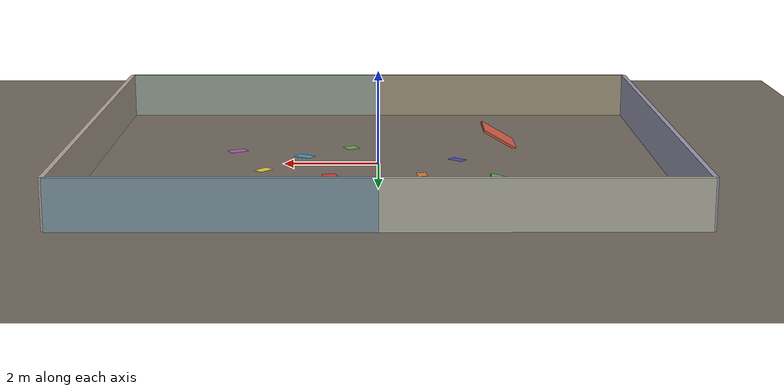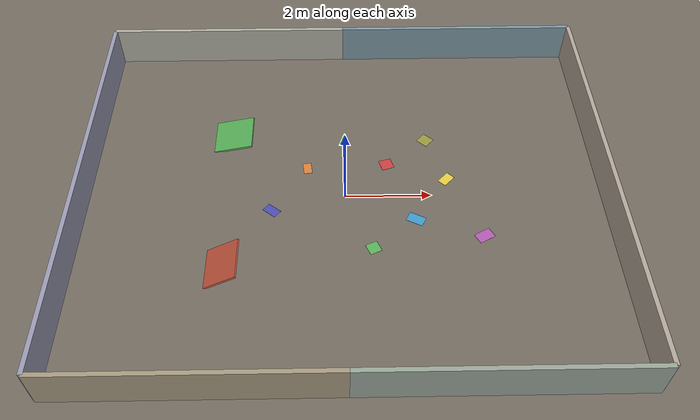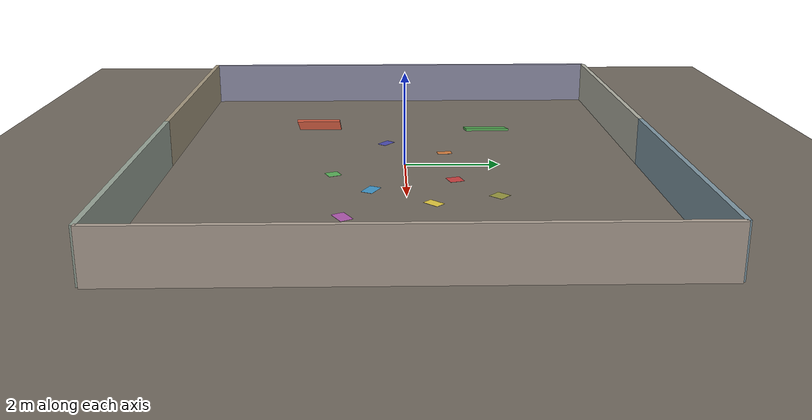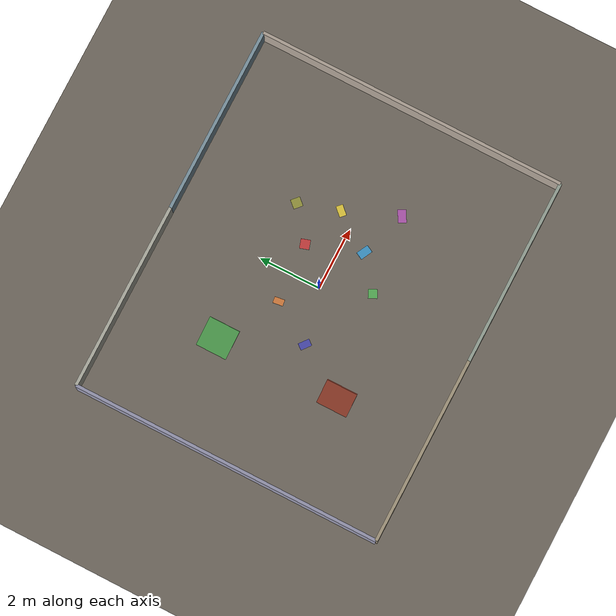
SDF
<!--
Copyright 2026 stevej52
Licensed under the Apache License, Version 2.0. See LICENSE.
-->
<?xml version="1.0" ?>
<sdf version="1.9">
  <world name="testbed">

    <physics name="1ms" type="ignored">
      <max_step_size>0.001</max_step_size>
      <real_time_factor>1.0</real_time_factor>
    </physics>

    <plugin filename="gz-sim-physics-system"
            name="gz::sim::systems::Physics"/>
    <plugin filename="gz-sim-user-commands-system"
            name="gz::sim::systems::UserCommands"/>
    <plugin filename="gz-sim-scene-broadcaster-system"
            name="gz::sim::systems::SceneBroadcaster"/>
    <plugin filename="gz-sim-sensors-system"
            name="gz::sim::systems::Sensors">
      <render_engine>ogre2</render_engine>
    </plugin>
    <plugin filename="gz-sim-imu-system"
            name="gz::sim::systems::Imu"/>

    <!-- Bright and slightly angled: flat lighting washes out the corners. -->
    <light type="directional" name="sun">
      <cast_shadows>true</cast_shadows>
      <pose>0 0 10 0 0 0</pose>
      <diffuse>0.9 0.9 0.9 1</diffuse>
      <specular>0.3 0.3 0.3 1</specular>
      <direction>-0.4 0.3 -0.9</direction>
    </light>

    <model name="ground_plane">
      <static>true</static>
      <link name="link">
        <collision name="collision">
          <geometry><plane><normal>0 0 1</normal><size>40 40</size></plane></geometry>
          <surface>
            <friction><ode><mu>1.0</mu><mu2>1.0</mu2></ode></friction>
          </surface>
        </collision>
        <visual name="visual">
          <geometry><plane><normal>0 0 1</normal><size>40 40</size></plane></geometry>
          <material>
            <ambient>0.35 0.33 0.30 1</ambient>
            <diffuse>0.45 0.42 0.38 1</diffuse>
          </material>
        </visual>
      </link>
    </model>

    <model name="texture_field">
      <static>true</static>
      <link name="link">

        <visual name="t0">
          <pose>1.0 1.0 0.001 0 0 0.3</pose>
          <geometry><box><size>0.30 0.30 0.002</size></box></geometry>
          <material><ambient>0.7 0.2 0.2 1</ambient><diffuse>0.8 0.25 0.25 1</diffuse></material>
        </visual>
        <visual name="t1">
          <pose>1.6 -0.7 0.001 0 0 1.1</pose>
          <geometry><box><size>0.25 0.40 0.002</size></box></geometry>
          <material><ambient>0.2 0.5 0.7 1</ambient><diffuse>0.25 0.6 0.8 1</diffuse></material>
        </visual>
        <visual name="t2">
          <pose>2.4 0.5 0.001 0 0 0.8</pose>
          <geometry><box><size>0.35 0.22 0.002</size></box></geometry>
          <material><ambient>0.8 0.7 0.2 1</ambient><diffuse>0.9 0.8 0.25 1</diffuse></material>
        </visual>
        <visual name="t3">
          <pose>0.6 -1.5 0.001 0 0 2.0</pose>
          <geometry><box><size>0.28 0.28 0.002</size></box></geometry>
          <material><ambient>0.3 0.6 0.3 1</ambient><diffuse>0.35 0.7 0.35 1</diffuse></material>
        </visual>
        <visual name="t4">
          <pose>3.1 -1.2 0.001 0 0 0.5</pose>
          <geometry><box><size>0.40 0.26 0.002</size></box></geometry>
          <material><ambient>0.6 0.3 0.6 1</ambient><diffuse>0.7 0.35 0.7 1</diffuse></material>
        </visual>
        <visual name="t5">
          <pose>-0.9 0.9 0.001 0 0 1.7</pose>
          <geometry><box><size>0.32 0.20 0.002</size></box></geometry>
          <material><ambient>0.75 0.45 0.2 1</ambient><diffuse>0.85 0.5 0.25 1</diffuse></material>
        </visual>
        <visual name="t6">
          <pose>-1.7 -0.4 0.001 0 0 0.9</pose>
          <geometry><box><size>0.22 0.36 0.002</size></box></geometry>
          <material><ambient>0.25 0.25 0.6 1</ambient><diffuse>0.3 0.3 0.7 1</diffuse></material>
        </visual>
        <visual name="t7">
          <pose>2.0 1.8 0.001 0 0 2.4</pose>
          <geometry><box><size>0.30 0.30 0.002</size></box></geometry>
          <material><ambient>0.5 0.5 0.2 1</ambient><diffuse>0.6 0.6 0.25 1</diffuse></material>
        </visual>

      </link>
    </model>

    <model name="walls">
      <static>true</static>
      <link name="link">

        <collision name="north"><pose>0 5 0.5 0 0 0</pose>
          <geometry><box><size>12 0.1 1.0</size></box></geometry></collision>
        <visual name="north_a"><pose>-3 5 0.5 0 0 0</pose>
          <geometry><box><size>6 0.1 1.0</size></box></geometry>
          <material><ambient>0.6 0.6 0.55 1</ambient><diffuse>0.7 0.7 0.65 1</diffuse></material></visual>
        <visual name="north_b"><pose>3 5 0.5 0 0 0</pose>
          <geometry><box><size>6 0.1 1.0</size></box></geometry>
          <material><ambient>0.45 0.5 0.55 1</ambient><diffuse>0.5 0.6 0.65 1</diffuse></material></visual>

        <collision name="south"><pose>0 -5 0.5 0 0 0</pose>
          <geometry><box><size>12 0.1 1.0</size></box></geometry></collision>
        <visual name="south_a"><pose>-3 -5 0.5 0 0 0</pose>
          <geometry><box><size>6 0.1 1.0</size></box></geometry>
          <material><ambient>0.55 0.5 0.45 1</ambient><diffuse>0.65 0.6 0.5 1</diffuse></material></visual>
        <visual name="south_b"><pose>3 -5 0.5 0 0 0</pose>
          <geometry><box><size>6 0.1 1.0</size></box></geometry>
          <material><ambient>0.5 0.55 0.5 1</ambient><diffuse>0.6 0.65 0.6 1</diffuse></material></visual>

        <collision name="east"><pose>6 0 0.5 0 0 0</pose>
          <geometry><box><size>0.1 10 1.0</size></box></geometry></collision>
        <visual name="east_v"><pose>6 0 0.5 0 0 0</pose>
          <geometry><box><size>0.1 10 1.0</size></box></geometry>
          <material><ambient>0.6 0.55 0.5 1</ambient><diffuse>0.7 0.65 0.6 1</diffuse></material></visual>

        <collision name="west"><pose>-6 0 0.5 0 0 0</pose>
          <geometry><box><size>0.1 10 1.0</size></box></geometry></collision>
        <visual name="west_v"><pose>-6 0 0.5 0 0 0</pose>
          <geometry><box><size>0.1 10 1.0</size></box></geometry>
          <material><ambient>0.5 0.5 0.6 1</ambient><diffuse>0.6 0.6 0.7 1</diffuse></material></visual>

      </link>
    </model>

    <!--
      Ramps for tilt_guard. 12 degrees is under its 25 degree roll trigger and
      must NOT set it off; 30 degrees is over and must. Drive along them for
      pitch, across them for roll.
    -->
    <model name="ramp_12deg">
      <static>true</static>
      <pose>-3.0 2.0 0 0 -0.2094 0</pose>
      <link name="link">
        <collision name="collision">
          <geometry><box><size>1.5 1.0 0.05</size></box></geometry>
          <surface><friction><ode><mu>1.0</mu><mu2>1.0</mu2></ode></friction></surface>
        </collision>
        <visual name="visual">
          <geometry><box><size>1.5 1.0 0.05</size></box></geometry>
          <material><ambient>0.3 0.6 0.3 1</ambient><diffuse>0.35 0.7 0.35 1</diffuse></material>
        </visual>
      </link>
    </model>

    <model name="ramp_30deg">
      <static>true</static>
      <pose>-3.0 -2.0 0 0 -0.5236 0</pose>
      <link name="link">
        <collision name="collision">
          <geometry><box><size>1.5 1.0 0.05</size></box></geometry>
          <surface><friction><ode><mu>1.0</mu><mu2>1.0</mu2></ode></friction></surface>
        </collision>
        <visual name="visual">
          <geometry><box><size>1.5 1.0 0.05</size></box></geometry>
          <material><ambient>0.7 0.3 0.2 1</ambient><diffuse>0.8 0.35 0.25 1</diffuse></material>
        </visual>
      </link>
    </model>

  </world>
</sdf>
